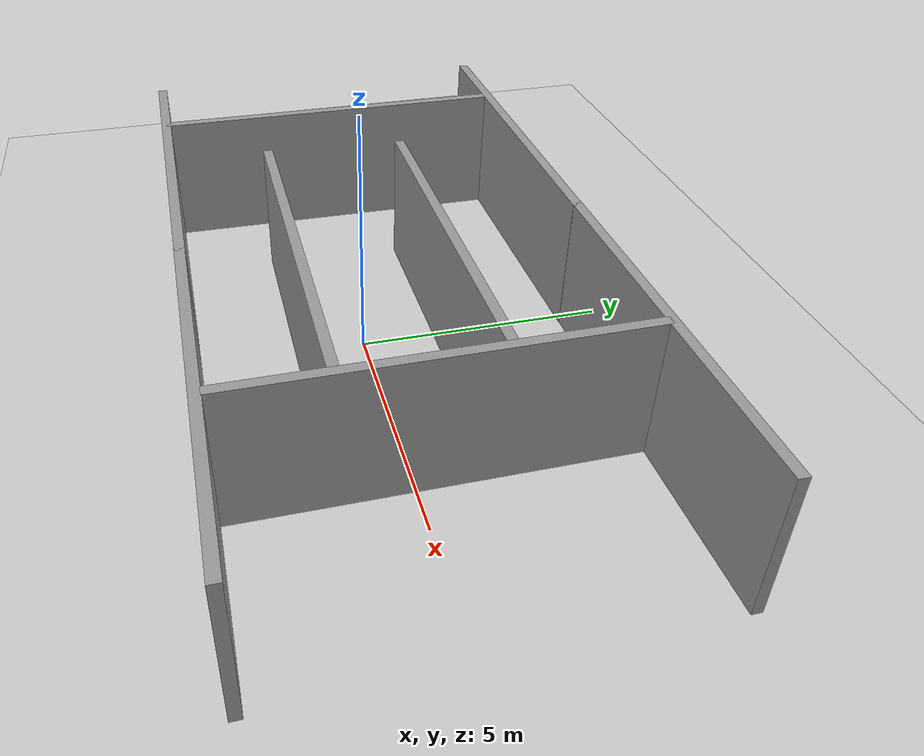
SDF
<sdf version="1.4">
 <world name="default">
  <light name="sun" type="directional">
   <pose>0 0 10 0 -0 0</pose>
   <diffuse>0.8 0.8 0.8 1</diffuse>
   <specular>0.2 0.2 0.2 1</specular>
   <attenuation>
    <range>1000</range>
    <constant>0.9</constant>
    <linear>0.01</linear>
    <quadratic>0.001</quadratic>
   </attenuation>
   <direction>-0.5 0.1 -0.9</direction>
  </light>
  <model name="ground_plane">
   <static>1</static>
   <link name="link">
    <collision name="collision">
     <geometry><plane><normal>0 0 1</normal><size>100 100</size></plane></geometry>
     <surface><friction><ode><mu>100</mu><mu2>50</mu2></ode></friction></surface>
    </collision>
    <visual name="visual">
     <cast_shadows>0</cast_shadows>
     <geometry><plane><normal>0 0 1</normal><size>100 100</size></plane></geometry>
     <material>
      <script><uri>file://media/materials/scripts/gazebo.material</uri><name>Gazebo/Grey</name></script>
     </material>
    </visual>
    <velocity_decay><linear>0</linear><angular>0</angular></velocity_decay>
   </link>
  </model>
  <physics name="default_physics" default="0" type="ode">
   <max_step_size>0.001</max_step_size>
   <real_time_factor>1</real_time_factor>
   <real_time_update_rate>1000</real_time_update_rate>
  </physics>
  <scene><ambient>0.4 0.4 0.4 1</ambient><background>0.7 0.7 0.7 1</background><shadows>1</shadows></scene>
  <spherical_coordinates>
   <surface_model>EARTH_WGS84</surface_model>
   <latitude_deg>0</latitude_deg>
   <longitude_deg>0</longitude_deg>
   <elevation>0</elevation>
   <heading_deg>0</heading_deg>
  </spherical_coordinates>
  <model name="grey_wall">
   <static>1</static>
   <link name="link">
    <pose>0 0 1.4 0 -0 0</pose>
    <collision name="collision"><geometry><box><size>7.5 0.2 2.8</size></box></geometry></collision>
    <visual name="visual">
     <cast_shadows>0</cast_shadows>
     <geometry><box><size>7.5 0.2 2.8</size></box></geometry>
     <material>
      <script>
       <uri>model://grey_wall/materials/scripts</uri>
       <uri>model://grey_wall/materials/textures</uri>
       <name>vrc/grey_wall</name>
      </script>
     </material>
    </visual>
    <velocity_decay><linear>0</linear><angular>0</angular></velocity_decay>
   </link>
   <pose>-3.55351 4.24639 0 0 -0 0</pose>
  </model>
  <model name="grey_wall_0">
   <static>1</static>
   <link name="link">
    <pose>0 0 1.4 0 -0 0</pose>
    <collision name="collision"><geometry><box><size>7.5 0.2 2.8</size></box></geometry></collision>
    <visual name="visual">
     <cast_shadows>0</cast_shadows>
     <geometry><box><size>7.5 0.2 2.8</size></box></geometry>
     <material>
      <script>
       <uri>model://grey_wall/materials/scripts</uri>
       <uri>model://grey_wall/materials/textures</uri>
       <name>vrc/grey_wall</name>
      </script>
     </material>
    </visual>
    <velocity_decay><linear>0</linear><angular>0</angular></velocity_decay>
   </link>
   <pose>-3.66844 -3.35742 0 0 -0 0</pose>
  </model>
  <model name="grey_wall_1">
   <static>1</static>
   <link name="link">
    <pose>0 0 1.4 0 -0 0</pose>
    <collision name="collision"><geometry><box><size>7.5 0.2 2.8</size></box></geometry></collision>
    <visual name="visual">
     <cast_shadows>0</cast_shadows>
     <geometry><box><size>7.5 0.2 2.8</size></box></geometry>
     <material>
      <script>
       <uri>model://grey_wall/materials/scripts</uri>
       <uri>model://grey_wall/materials/textures</uri>
       <name>vrc/grey_wall</name>
      </script>
     </material>
    </visual>
    <velocity_decay><linear>0</linear><angular>0</angular></velocity_decay>
   </link>
   <pose>-5.36996 0.404696 0 0 0 -1.5787</pose>
  </model>
  <model name="grey_wall_2">
   <static>1</static>
   <link name="link">
    <pose>0 0 1.4 0 -0 0</pose>
    <collision name="collision"><geometry><box><size>7.5 0.2 2.8</size></box></geometry></collision>
    <visual name="visual">
     <cast_shadows>0</cast_shadows>
     <geometry><box><size>7.5 0.2 2.8</size></box></geometry>
     <material>
      <script>
       <uri>model://grey_wall/materials/scripts</uri>
       <uri>model://grey_wall/materials/textures</uri>
       <name>vrc/grey_wall</name>
      </script>
     </material>
    </visual>
    <velocity_decay><linear>0</linear><angular>0</angular></velocity_decay>
   </link>
   <pose>0.198974 -1.2932 0 0 -0 0</pose>
  </model>
  <model name="grey_wall_3">
   <static>1</static>
   <link name="link">
    <pose>0 0 1.4 0 -0 0</pose>
    <collision name="collision"><geometry><box><size>7.5 0.2 2.8</size></box></geometry></collision>
    <visual name="visual">
     <cast_shadows>0</cast_shadows>
     <geometry><box><size>7.5 0.2 2.8</size></box></geometry>
     <material>
      <script>
       <uri>model://grey_wall/materials/scripts</uri>
       <uri>model://grey_wall/materials/textures</uri>
       <name>vrc/grey_wall</name>
      </script>
     </material>
    </visual>
    <velocity_decay><linear>0</linear><angular>0</angular></velocity_decay>
   </link>
   <pose>4.05261 0.474457 0.00212 0 0 -1.57102</pose>
  </model>
  <model name="grey_wall_4">
   <static>1</static>
   <link name="link">
    <pose>0 0 1.4 0 -0 0</pose>
    <collision name="collision"><geometry><box><size>7.5 0.2 2.8</size></box></geometry></collision>
    <visual name="visual">
     <cast_shadows>0</cast_shadows>
     <geometry><box><size>7.5 0.2 2.8</size></box></geometry>
     <material>
      <script>
       <uri>model://grey_wall/materials/scripts</uri>
       <uri>model://grey_wall/materials/textures</uri>
       <name>vrc/grey_wall</name>
      </script>
     </material>
    </visual>
    <velocity_decay><linear>0</linear><angular>0</angular></velocity_decay>
   </link>
   <pose>3.77529 -3.35995 0 0 -0 0</pose>
  </model>
  <model name="grey_wall_5">
   <static>1</static>
   <link name="link">
    <pose>0 0 1.4 0 -0 0</pose>
    <collision name="collision"><geometry><box><size>7.5 0.2 2.8</size></box></geometry></collision>
    <visual name="visual">
     <cast_shadows>0</cast_shadows>
     <geometry><box><size>7.5 0.2 2.8</size></box></geometry>
     <material>
      <script>
       <uri>model://grey_wall/materials/scripts</uri>
       <uri>model://grey_wall/materials/textures</uri>
       <name>vrc/grey_wall</name>
      </script>
     </material>
    </visual>
    <velocity_decay><linear>0</linear><angular>0</angular></velocity_decay>
   </link>
   <pose>0.38848 1.56295 0 0 -0 0</pose>
  </model>
  <model name="grey_wall_6">
   <static>1</static>
   <link name="link">
    <pose>0 0 1.4 0 -0 0</pose>
    <collision name="collision"><geometry><box><size>7.5 0.2 2.8</size></box></geometry></collision>
    <visual name="visual">
     <cast_shadows>0</cast_shadows>
     <geometry><box><size>7.5 0.2 2.8</size></box></geometry>
     <material>
      <script>
       <uri>model://grey_wall/materials/scripts</uri>
       <uri>model://grey_wall/materials/textures</uri>
       <name>vrc/grey_wall</name>
      </script>
     </material>
    </visual>
    <velocity_decay><linear>0</linear><angular>0</angular></velocity_decay>
   </link>
   <pose>3.87541 4.25232 0 0 -0 0</pose>
  </model>
  <gravity>0 0 -9.8</gravity>
  <magnetic_field>6e-06 2.3e-05 -4.2e-05</magnetic_field>
  <atmosphere type="adiabatic"/>
 </world>
</sdf>
